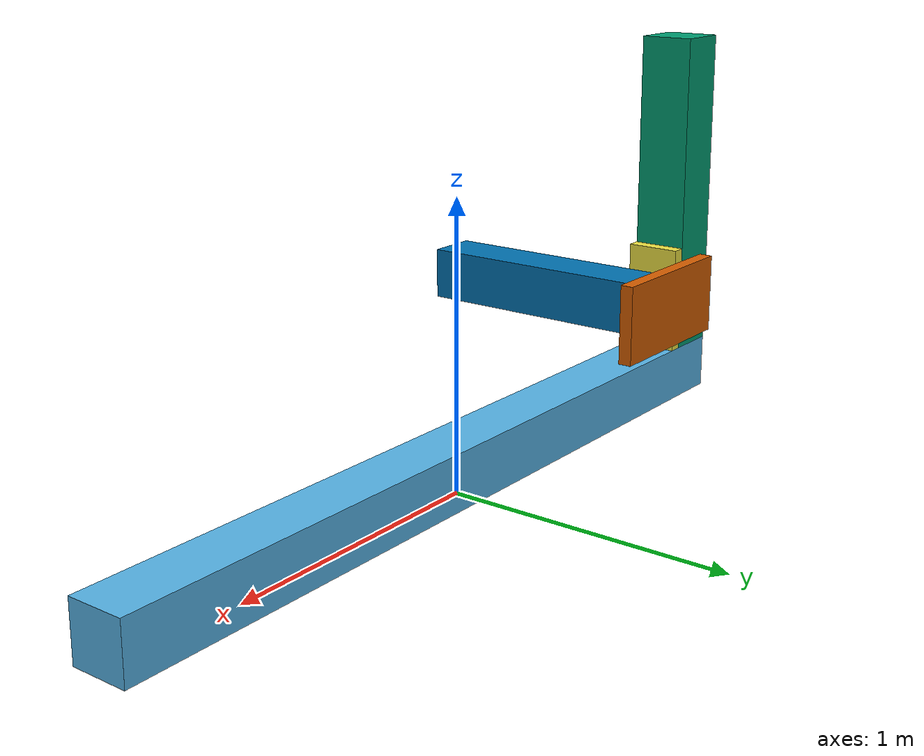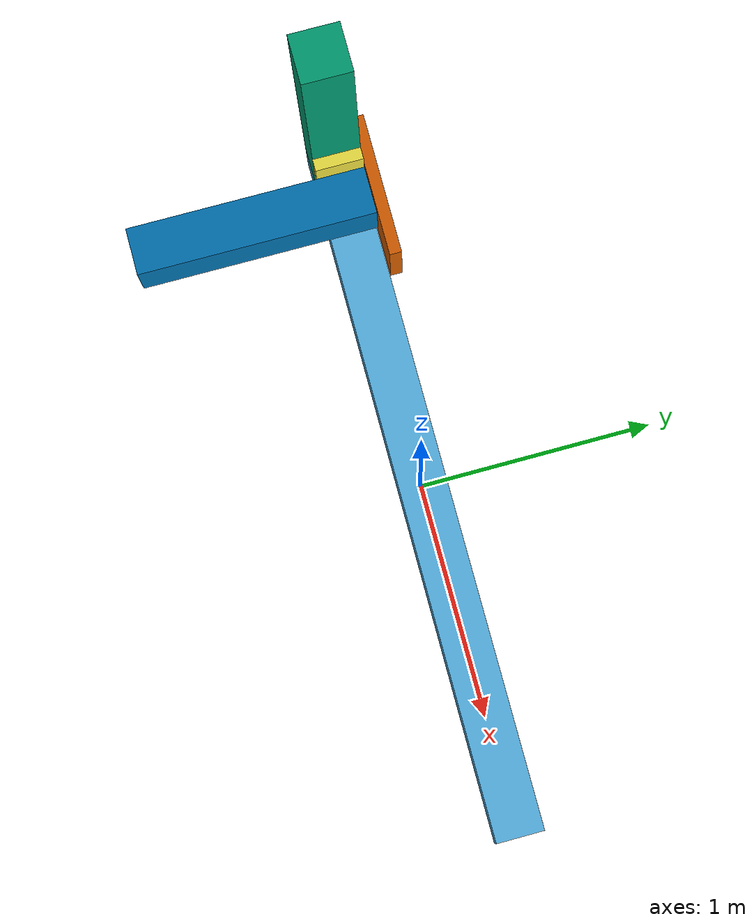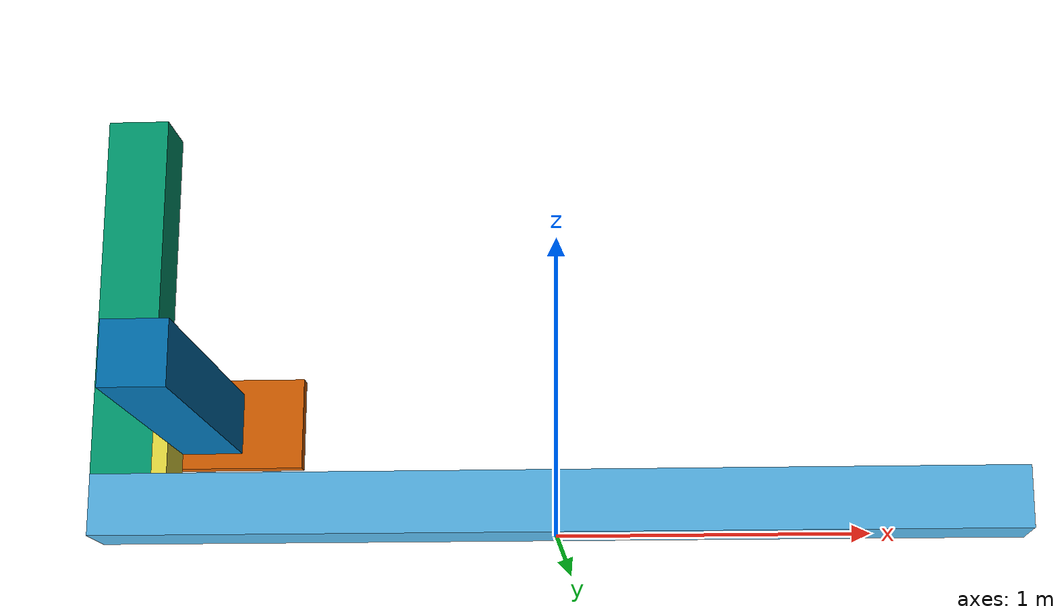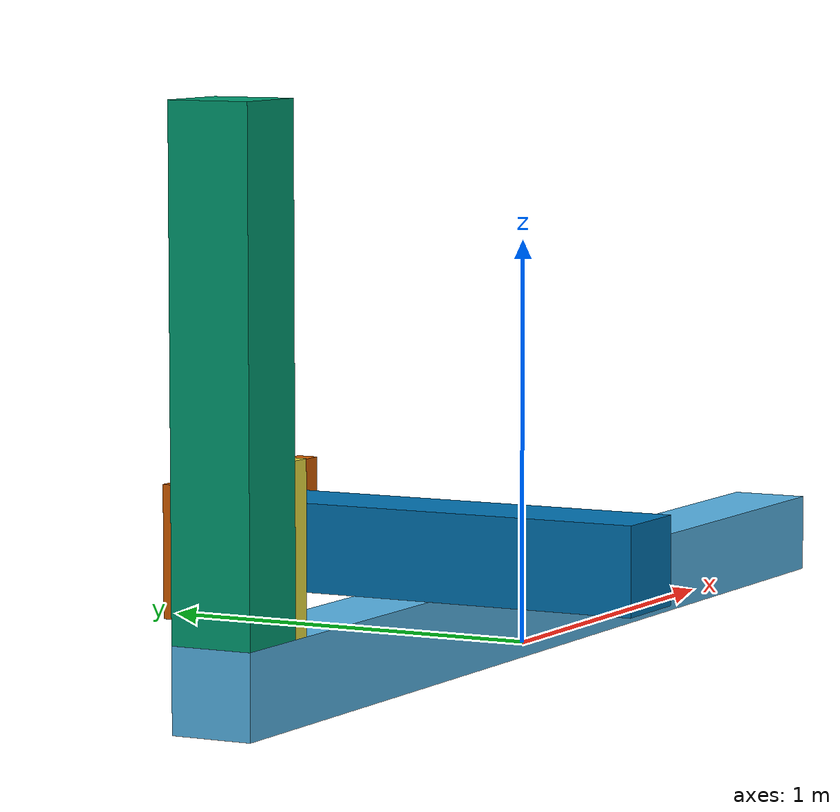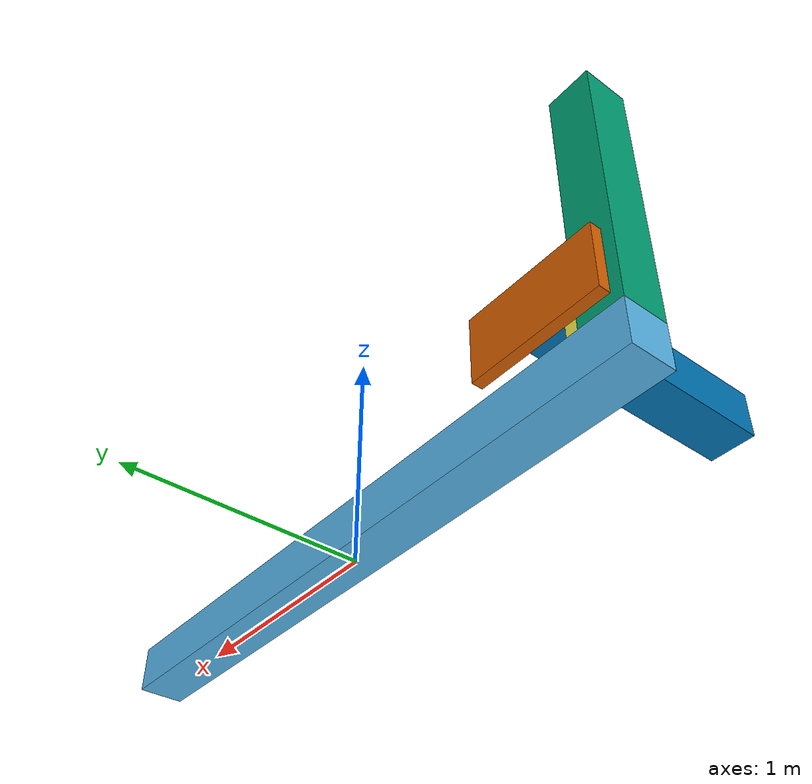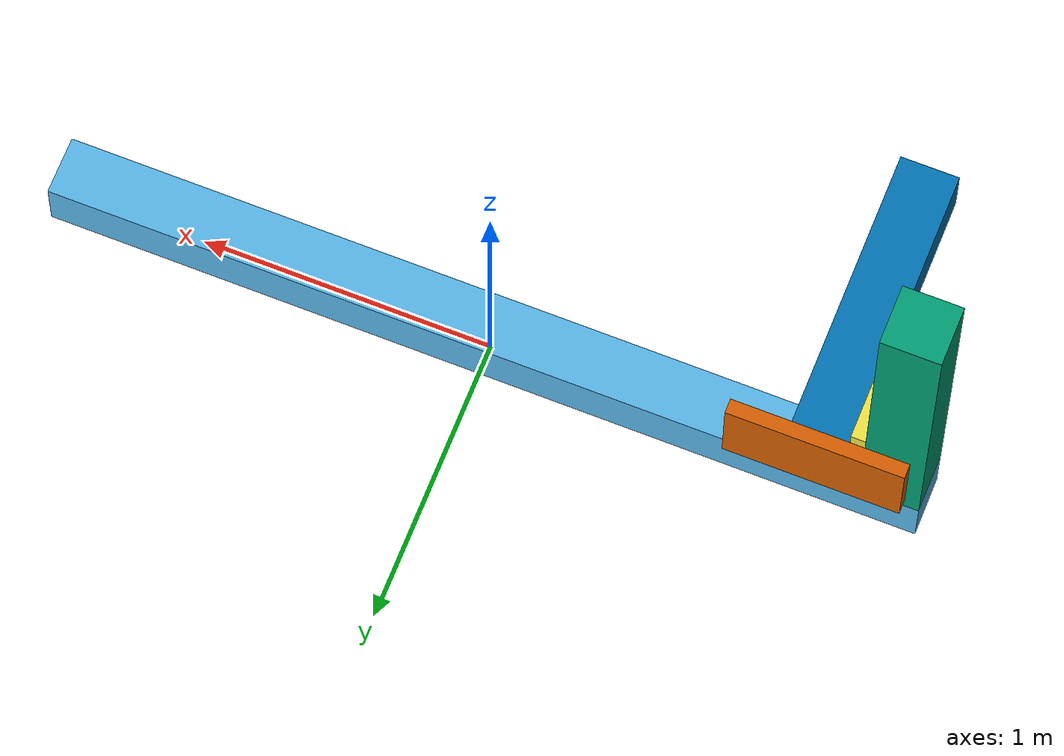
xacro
<?xml version="1.0"?>
<robot name="deflector_robot" xmlns:xacro="http://www.ros.org/wiki/xacro">

<!-- Set the size of robot axes, as well as their positions and orientations -->
<xacro:include filename="$(find deflector_robot)/urdf/properties.xacro" />
<!-- Gazebo materials -->
<xacro:include filename="$(find deflector_robot)/urdf/deflector.gazebo" />
<!-- Inertia Matrix Calculations -->
<xacro:include filename="$(find deflector_robot)/urdf/inertia_tensors.urdf.xacro" />

<!-- Used for fixing robot to Gazebo 'base_link' -->
  <link name="world"/>

  <joint name="robot_to_world" type="fixed">
    <parent link="world"/>
    <child link="link1"/>
  </joint>

 <!-- Base Link -->
  <link name="link1">
    <collision>
      <xacro:insert_block name="base_link_origin" />
      <geometry>
	   <box size="${x_width_l1} ${y_width_l1} ${lenght_l1}"/>
      </geometry>
    </collision>
    <visual>
      <xacro:insert_block name="base_link_origin" />
      <geometry>
        <box size="${x_width_l1} ${y_width_l1} ${lenght_l1}"/>
      </geometry>
    </visual>
    <inertial>
      <!-- The center of each inertia box is aligned with the center of mass of its link -->
      <xacro:insert_block name="base_link_origin" />
      <mass value="${mass_l1}"/>
      <xacro:inertial_cuboid mass="${mass_l1}" x_width="${x_width_l1}" y_width="${y_width_l1}" length="${lenght_l1}" >
      </xacro:inertial_cuboid>
    </inertial>
  </link>

<joint name="prismatic_joint1" type="prismatic">
    <parent link="link1"/>
    <child link="link2"/>
    <!-- link origin with respect to the origin of the body of the parent link -->
    <origin xyz="${-lenght_l1/2+x_width_l2/2} 0.0 ${x_width_l1}" rpy="0 0 0"/> <!-- at the beginning, on the surface -->
    <!-- specify upper and lower range of motion -->
    <!-- maximum control effort (1000 N force) and maximum velocity (1.0 m/sec) -->
    <limit effort="1000.0" lower="0" upper="${lenght_l1-x_width_l2}" velocity="1.0"/> <!-- upper 3.8 -->
    <axis xyz="1 0 0"/>  <!-- In which axis the movement is performed -->
    <dynamics damping="10.0"/>
  </joint>

  <!-- Vertical Pole / Middle Link -->
  <link name="link2">
    <collision>
      <xacro:insert_block name="middle_link_origin" />
      <geometry>
       <box size="${x_width_l2} ${y_width_l2} ${lenght_l2}"/>
      </geometry>
    </collision>

    <visual>
      <xacro:insert_block name="middle_link_origin" />
      <geometry>
	   <box size="${x_width_l2} ${y_width_l2} ${lenght_l2}"/>
      </geometry>
    </visual>
    <inertial>
      <xacro:insert_block name="middle_link_origin" />
      <mass value="${mass_l2}"/>
      <xacro:inertial_cuboid mass="${mass_l2}" x_width="${x_width_l2}" y_width="${y_width_l2}" length="${lenght_l1}" >
      </xacro:inertial_cuboid>
    </inertial>
  </link>

<joint name="prismatic_joint2" type="prismatic">
    <parent link="link2"/>
    <child link="link3"/>
    <!-- origin pose in the frame of reference of the parent link -->
    <!-- use p or y to set orientation of Gantry -->
    <origin xyz="${x_width_l2/2} 0.0 ${x_width_gantry/2}" rpy="0 ${pi/2} 0"/>
    <!-- specify upper and lower range of motion -->
    <!-- maximum control effort (1000 N force) and maximum velocity (1.0 m/sec) -->
    <limit effort="1000.0" lower="${-lenght_l2+x_width_gantry}" upper="0" velocity="1.0"/><!--low: -0.6-->
    <axis xyz="1 0 0"/>  <!-- In which axis the movement is performed -->
    <dynamics damping="10.0"/>
  </joint>

  <!-- Gantry Cart -->
  <link name="link3">
    <collision>
      <xacro:insert_block name="gantry_link_origin" />
      <geometry>
	   <box size="${x_width_gantry} ${y_width_gantry} ${height_gantry}"/>
      </geometry>
    </collision>

    <visual>
      <xacro:insert_block name="gantry_link_origin" />
      <geometry>
	   <box size="${x_width_gantry} ${y_width_gantry} ${height_gantry}"/>
      </geometry>
    </visual>
    <inertial>
      <xacro:insert_block name="gantry_link_origin" />
            <mass value="${mass_gantry}"/>
      <xacro:inertial_cuboid mass="${mass_gantry}" x_width="${x_width_gantry}" y_width="${y_width_gantry}" length="${height_gantry}" >
      </xacro:inertial_cuboid>
    </inertial>
  </link>

<joint name="prismatic_joint3" type="prismatic">
    <limit effort="1000.0" lower="0" upper="${lenght_l4-y_width_gantry}" velocity="0.5"/> <!-- upper:0.8 -->
    <parent link="link3"/>
    <child link="link4"/>
    <!-- origin pose in the frame of reference of the parent link -->
    <origin xyz="0 0 ${height_gantry}" rpy="0 0 0"/>
    <axis xyz="0 1 0"/>  <!-- In which axis the movement is performed -->
    <dynamics damping="1.0"/>
  </joint>

  <!-- Top Link -->
  <link name="link4">
    <collision>
    <xacro:insert_block name="top_link_origin" />
      <geometry>
	   <box size="${x_width_l4} ${y_width_l4} ${lenght_l4}"/>
      </geometry>
    </collision>

    <visual>
      <xacro:insert_block name="top_link_origin" />
      <geometry>
	   <box size="${x_width_l4} ${y_width_l4} ${lenght_l4}"/>
      </geometry>
    </visual>

    <inertial>
      <xacro:insert_block name="top_link_origin" />
      <mass value="${mass_l4}"/>
      <xacro:inertial_cuboid mass="${mass_l4}" x_width="${x_width_l4}" y_width="${y_width_l4}" length="${lenght_l4}" >
      </xacro:inertial_cuboid>
    </inertial>
  </link>

<!-- End Effector -->
<xacro:if value="$(arg end_effector_plate)">

    <joint name="end_effector_joint" type="fixed">
      <!-- link origin with respect to the origin of the body of the parent link -->
      <origin xyz="0 ${y_width_l4/2} ${y_width_l4/2}" rpy="${pi/2} 0 0" /> <!-- Placed at the center of one end of the parent link (link 4) -->
      <parent link="link4"/>
      <child link="end_effector_plate"/>
    </joint>

 <!-- End Effector Link -->
  <link name="end_effector_plate">
    <collision>
    <xacro:insert_block name="ee_plate_link_origin" />
      <geometry>
	   <box size="${x_width_ee_plate} ${y_width_ee_plate} ${height_ee_plate}"/>
      </geometry>
    </collision>

    <visual>
      <xacro:insert_block name="ee_plate_link_origin" />
      <geometry>
	   <box size="${x_width_ee_plate} ${y_width_ee_plate} ${height_ee_plate}"/>
      </geometry>
    </visual>

    <inertial>
      <xacro:insert_block name="ee_plate_link_origin" />
      <mass value="${mass_ee_plate}"/>
      <xacro:inertial_cuboid mass="${mass_ee_plate}" x_width="${x_width_ee_plate}" y_width="${y_width_ee_plate}" length="${height_ee_plate}" >
      </xacro:inertial_cuboid>
    </inertial>
  </link>

</xacro:if>

<!-- declare transmissions and actuators required to interface with ROS control -->
<!-- defines ressource of hardware_interface::EffortJointInterface -->
  <transmission name="tran1">
    <type>transmission_interface/SimpleTransmission</type>
    <joint name="prismatic_joint1">
      <hardwareInterface>hardware_interface/EffortJointInterface</hardwareInterface>
    </joint>
    <actuator name="motor1">
      <hardwareInterface>hardware_interface/EffortJointInterface</hardwareInterface>
      <mechanicalReduction>1</mechanicalReduction>
    </actuator>
  </transmission>

  <transmission name="tran2">
    <type>transmission_interface/SimpleTransmission</type>
    <joint name="prismatic_joint2">
      <hardwareInterface>hardware_interface/EffortJointInterface</hardwareInterface>
    </joint>
    <actuator name="motor2">
      <hardwareInterface>hardware_interface/EffortJointInterface</hardwareInterface>
      <mechanicalReduction>1</mechanicalReduction>
    </actuator>
  </transmission>

  <transmission name="tran3">
    <type>transmission_interface/SimpleTransmission</type>
    <joint name="prismatic_joint3">
      <hardwareInterface>hardware_interface/EffortJointInterface</hardwareInterface>
    </joint>
    <actuator name="motor3">
      <hardwareInterface>hardware_interface/EffortJointInterface</hardwareInterface>
      <mechanicalReduction>1</mechanicalReduction>
    </actuator>
  </transmission>

<?ignore
?> <!-- end of non-existing processing instruction -->

</robot>

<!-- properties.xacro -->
<robot xmlns:xacro="http://www.ros.org/wiki/xacro" name="properties">

<!-- Constants -->
<xacro:property name="PI" value="3.1415926535897931"/>
<xacro:property name="mass_l1" value="1000.0" />
<xacro:property name="mass_l2" value="100.0" />
<xacro:property name="mass_gantry" value="0.1" />
<xacro:property name="mass_l4" value="10.0" />
<xacro:property name="mass_ee_plate" value="1.0" />

<xacro:property name="axel_offset" value="0.1" />

<!-- Size of Robot Axes -->
<xacro:property name="x_width_l1" value="0.2" /> <!-- when in horizontal plane this is the height -->
<xacro:property name="y_width_l1" value="0.2" />
<xacro:property name="lenght_l1" value="3.0" />

<xacro:property name="x_width_l2" value="0.2" /> <!-- same axis as lenght of link 1 -->
<xacro:property name="y_width_l2" value="0.2" />
<xacro:property name="lenght_l2" value="1.2" />

<xacro:property name="x_width_gantry" value="0.4" /> <!-- same axis as lenght of link 2 -->
<xacro:property name="y_width_gantry" value="0.2" />
<xacro:property name="height_gantry" value="0.05" />

<xacro:property name="x_width_l4" value="0.2" /> <!-- same axis as lenght of link 2 -->
<xacro:property name="y_width_l4" value="0.2" />
<xacro:property name="lenght_l4" value="1.0" />

<xacro:property name="x_width_ee_plate" value="0.3" /> <!-- parallel to axis of lenght of link 2 -->
<xacro:property name="y_width_ee_plate" value="0.6" /> <!-- parallel to axis of lenght of link 1 -->
<xacro:property name="height_ee_plate" value="0.05" />

<!-- Origin Positions and Orientations -->
<!-- Set the origin pose on the base link (as child frame) -->
<xacro:property name="base_link_origin">
  <origin xyz="0 0 ${x_width_l1/2}" rpy="0 ${pi/2} 0" /> <!-- set horizontal orientation -->
</xacro:property>

<!-- Set the origin pose on the middle link (as child frame) -->
<xacro:property name="middle_link_origin">
  <origin xyz="0 0 ${lenght_l2/2}" rpy="0 0 0" /> <!-- vertical orientation by default -->
</xacro:property>

<!-- Set the origin pose on the gantry link (as child frame) -->
<xacro:property name="gantry_link_origin">
  <origin xyz="0 0 ${height_gantry/2}" rpy="0 0 0" />
</xacro:property>

<!-- Set the origin pose on the top link (child frame) -->
<xacro:property name="top_link_origin">
  <origin xyz="0 ${-lenght_l4/2+y_width_gantry/2} ${y_width_l4/2}" rpy="${pi/2} 0 0" />
</xacro:property>

<!-- Set the origin pose on the end effector link (child frame = end_effector) -->
<xacro:property name="ee_plate_link_origin">
  <origin xyz="0.0  0.0 ${-height_ee_plate/2}" rpy="0 0 0" /> <!-- Place at the surface of the plate -->
</xacro:property>

<!-- End Effector Configuration -->
<xacro:arg name="end_effector_plate" default="true"/>

</robot>

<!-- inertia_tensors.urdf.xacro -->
<robot xmlns:xacro="http://www.ros.org/wiki/xacro">
  <xacro:macro name="inertial_cuboid" params="mass x_width y_width length">
      <inertia ixx="${(1/12) * mass * (y_width*y_width + length*length)}" ixy="0.0" ixz="0.0"
               iyy="${(1/12) * mass * (x_width*x_width + length*length)}" iyz="0.0"
               izz="${(1/12) * mass * (x_width*x_width + y_width*y_width)}" />
  </xacro:macro>
</robot>
